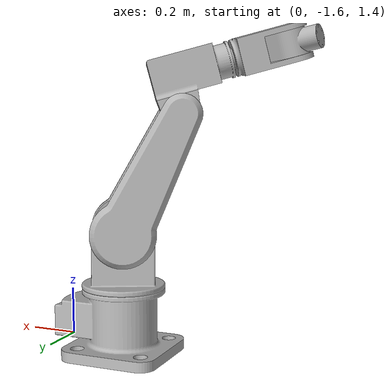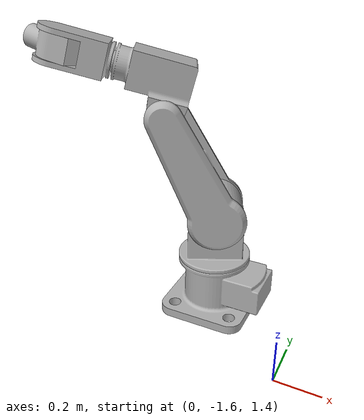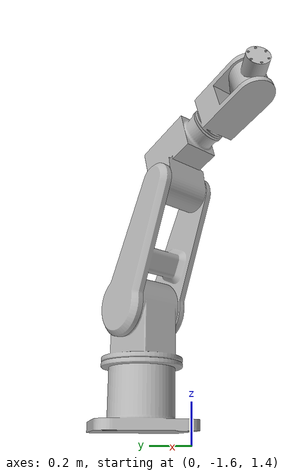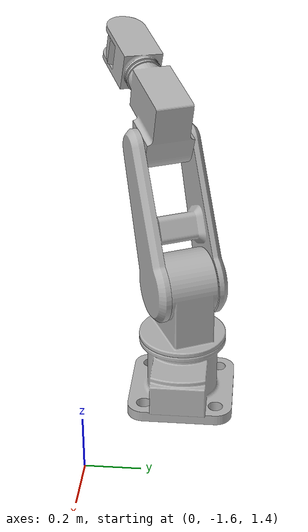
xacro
<?xml version="1.0" ?>
<robot name="Assem1" xmlns:xacro="http://www.ros.org/wiki/xacro">

<xacro:include filename="$(find Assem1_description)/urdf/materials.xacro" />
<xacro:include filename="$(find Assem1_description)/urdf/Assem1.trans" />
<xacro:include filename="$(find Assem1_description)/urdf/Assem1.gazebo" />
<link name="base_link">
  <inertial>
    <origin xyz="-0.3631357631440988 -1.2853631397968324 1.549225903386944" rpy="0 0 0"/>
    <mass value="8.273377133383082"/>
    <inertia ixx="0.10107" iyy="0.142408" izz="0.155861" ixy="-0.0" iyz="-0.0" ixz="-0.012189"/>
  </inertial>
  <visual>
    <origin xyz="0 0 0" rpy="0 0 0"/>
    <geometry>
      <mesh filename="package://Assem1_description/meshes/base_link.stl" scale="0.001 0.001 0.001"/>
    </geometry>
    <material name="silver"/>
  </visual>
  <collision>
    <origin xyz="0 0 0" rpy="0 0 0"/>
    <geometry>
      <mesh filename="package://Assem1_description/meshes/base_link.stl" scale="0.001 0.001 0.001"/>
    </geometry>
  </collision>
</link>

<link name="LINK1_1">
  <inertial>
    <origin xyz="2.1948999739951347e-07 -1.5224926852575038e-07 0.2027969647681127" rpy="0 0 0"/>
    <mass value="6.642241324989527"/>
    <inertia ixx="0.121389" iyy="0.129273" izz="0.050189" ixy="-0.004864" iyz="-0.0" ixz="0.0"/>
  </inertial>
  <visual>
    <origin xyz="0.401053 1.285363 -1.589552" rpy="0 0 0"/>
    <geometry>
      <mesh filename="package://Assem1_description/meshes/LINK1_1.stl" scale="0.001 0.001 0.001"/>
    </geometry>
    <material name="silver"/>
  </visual>
  <collision>
    <origin xyz="0.401053 1.285363 -1.589552" rpy="0 0 0"/>
    <geometry>
      <mesh filename="package://Assem1_description/meshes/LINK1_1.stl" scale="0.001 0.001 0.001"/>
    </geometry>
  </collision>
</link>

<link name="LINK2_1">
  <inertial>
    <origin xyz="1.857970652418317 0.3984930142119294 1.369672347223048" rpy="0 0 0"/>
    <mass value="8.932817868239988"/>
    <inertia ixx="0.349101" iyy="0.352823" izz="0.15396" ixy="-0.002296" iyz="0.053625" ixz="0.112493"/>
  </inertial>
  <visual>
    <origin xyz="2.332068 1.718676 -0.725431" rpy="0 0 0"/>
    <geometry>
      <mesh filename="package://Assem1_description/meshes/LINK2_1.stl" scale="0.001 0.001 0.001"/>
    </geometry>
    <material name="silver"/>
  </visual>
  <collision>
    <origin xyz="2.332068 1.718676 -0.725431" rpy="0 0 0"/>
    <geometry>
      <mesh filename="package://Assem1_description/meshes/LINK2_1.stl" scale="0.001 0.001 0.001"/>
    </geometry>
  </collision>
</link>

<link name="LINK3_1">
  <inertial>
    <origin xyz="-0.05381438529888516 0.07404972349917349 0.12209650157084573" rpy="0 0 0"/>
    <mass value="3.7931012329372007"/>
    <inertia ixx="0.031883" iyy="0.040888" izz="0.028531" ixy="-0.005555" iyz="0.002772" ixz="0.005815"/>
  </inertial>
  <visual>
    <origin xyz="0.560526 1.461086 -2.378762" rpy="0 0 0"/>
    <geometry>
      <mesh filename="package://Assem1_description/meshes/LINK3_1.stl" scale="0.001 0.001 0.001"/>
    </geometry>
    <material name="silver"/>
  </visual>
  <collision>
    <origin xyz="0.560526 1.461086 -2.378762" rpy="0 0 0"/>
    <geometry>
      <mesh filename="package://Assem1_description/meshes/LINK3_1.stl" scale="0.001 0.001 0.001"/>
    </geometry>
  </collision>
</link>

<link name="LINK4_1">
  <inertial>
    <origin xyz="-0.1445061038369594 -0.06888601817030504 0.0432708383861824" rpy="0 0 0"/>
    <mass value="1.4892951413019413"/>
    <inertia ixx="0.00702" iyy="0.012203" izz="0.012664" ixy="-0.003208" iyz="0.000878" ixz="0.0019"/>
  </inertial>
  <visual>
    <origin xyz="0.732408 1.443318 -2.568841" rpy="0 0 0"/>
    <geometry>
      <mesh filename="package://Assem1_description/meshes/LINK4_1.stl" scale="0.001 0.001 0.001"/>
    </geometry>
    <material name="silver"/>
  </visual>
  <collision>
    <origin xyz="0.732408 1.443318 -2.568841" rpy="0 0 0"/>
    <geometry>
      <mesh filename="package://Assem1_description/meshes/LINK4_1.stl" scale="0.001 0.001 0.001"/>
    </geometry>
  </collision>
</link>

<link name="LINK5_1">
  <inertial>
    <origin xyz="-0.01861061052294455 -0.0070307934372491054 -0.046593384368052604" rpy="0 0 0"/>
    <mass value="0.7527792924601906"/>
    <inertia ixx="0.001567" iyy="0.003903" izz="0.004129" ixy="0.000279" iyz="-5e-06" ixz="0.000547"/>
  </inertial>
  <visual>
    <origin xyz="0.957033 1.547545 -2.687502" rpy="0 0 0"/>
    <geometry>
      <mesh filename="package://Assem1_description/meshes/LINK5_1.stl" scale="0.001 0.001 0.001"/>
    </geometry>
    <material name="silver"/>
  </visual>
  <collision>
    <origin xyz="0.957033 1.547545 -2.687502" rpy="0 0 0"/>
    <geometry>
      <mesh filename="package://Assem1_description/meshes/LINK5_1.stl" scale="0.001 0.001 0.001"/>
    </geometry>
  </collision>
</link>

<joint name="Ðý×ª1" type="continuous">
  <origin xyz="-0.401053 -1.285363 1.589552" rpy="0 0 0"/>
  <parent link="base_link"/>
  <child link="LINK1_1"/>
  <axis xyz="-0.0 0.0 1.0"/>
</joint>

<joint name="Ðý×ª2" type="continuous">
  <origin xyz="-1.931015 -0.433313 -0.864121" rpy="0 0 0"/>
  <parent link="LINK1_1"/>
  <child link="LINK2_1"/>
  <axis xyz="-0.430305 0.902684 -0.0"/>
</joint>

<joint name="Ðý×ª3" type="continuous">
  <origin xyz="1.771542 0.25759 1.653331" rpy="0 0 0"/>
  <parent link="LINK2_1"/>
  <child link="LINK3_1"/>
  <axis xyz="-0.430305 0.902684 -0.0"/>
</joint>

<joint name="Ðý×ª4" type="continuous">
  <origin xyz="-0.171882 0.017768 0.190079" rpy="0 0 0"/>
  <parent link="LINK3_1"/>
  <child link="LINK4_1"/>
  <axis xyz="-0.871407 -0.415396 0.260952"/>
</joint>

<joint name="Ðý×ª5" type="continuous">
  <origin xyz="-0.224625 -0.104227 0.118661" rpy="0 0 0"/>
  <parent link="LINK4_1"/>
  <child link="LINK5_1"/>
  <axis xyz="-0.2131 -0.158595 -0.964073"/>
</joint>

</robot>

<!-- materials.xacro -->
<robot name="Assem1" xmlns:xacro="http://www.ros.org/wiki/xacro" >

<material name="silver">
  <color rgba="0.700 0.700 0.700 1.000"/>
</material>

</robot>

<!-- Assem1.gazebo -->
<robot name="Assem1" xmlns:xacro="http://www.ros.org/wiki/xacro" >

<xacro:property name="body_color" value="Gazebo/Silver" />

<gazebo>
  <plugin name="control" filename="libgazebo_ros_control.so"/>
</gazebo>
<gazebo reference="base_link">
  <material>${body_color}</material>
  <mu1>0.2</mu1>
  <mu2>0.2</mu2>
  <selfCollide>true</selfCollide>
  <gravity>true</gravity>
</gazebo>

<gazebo reference="LINK1_1">
  <material>${body_color}</material>
  <mu1>0.2</mu1>
  <mu2>0.2</mu2>
  <selfCollide>true</selfCollide>
</gazebo>

<gazebo reference="LINK2_1">
  <material>${body_color}</material>
  <mu1>0.2</mu1>
  <mu2>0.2</mu2>
  <selfCollide>true</selfCollide>
</gazebo>

<gazebo reference="LINK3_1">
  <material>${body_color}</material>
  <mu1>0.2</mu1>
  <mu2>0.2</mu2>
  <selfCollide>true</selfCollide>
</gazebo>

<gazebo reference="LINK4_1">
  <material>${body_color}</material>
  <mu1>0.2</mu1>
  <mu2>0.2</mu2>
  <selfCollide>true</selfCollide>
</gazebo>

<gazebo reference="LINK5_1">
  <material>${body_color}</material>
  <mu1>0.2</mu1>
  <mu2>0.2</mu2>
  <selfCollide>true</selfCollide>
</gazebo>

</robot>
